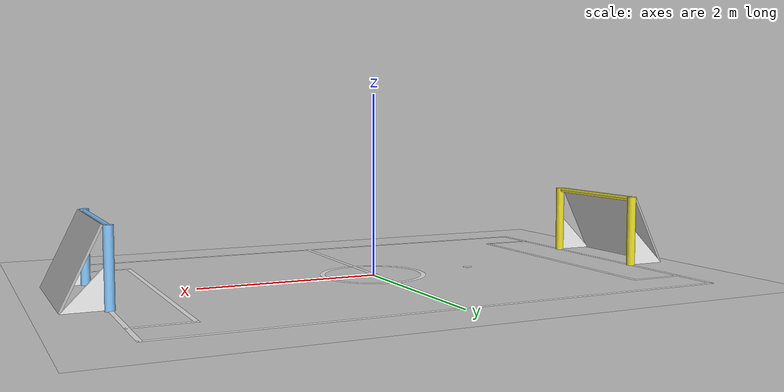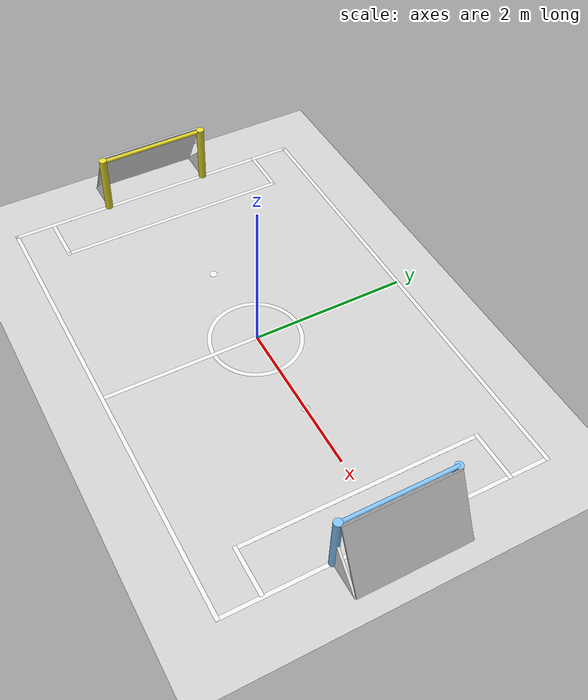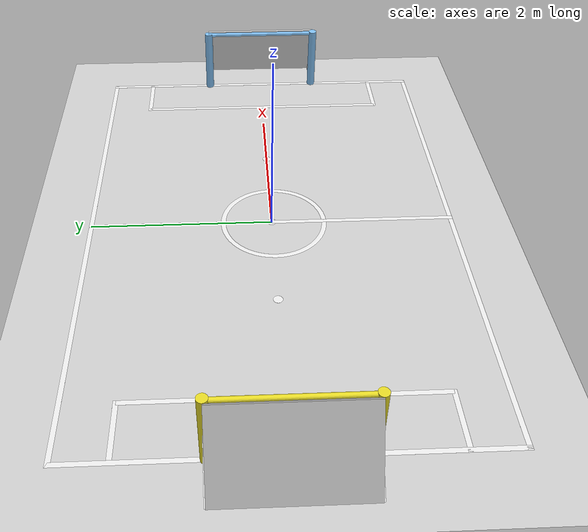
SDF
<?xml version="1.0" ?>
<sdf version="1.4">
  <model name="RoboCupSplField">
    <static>true</static>

    <link name="carpet">
      <pose>0 0 0.01 0 0 0</pose>
      <collision name="collision">
        <geometry>
          <plane>
            <normal>0 0 1</normal>
            <size>7.40 5.40</size>
          </plane>
        </geometry>
        <surface>
          <friction>
            <ode>
              <mu>100</mu>
              <mu2>50</mu2>
            </ode>
          </friction>
        </surface>
      </collision>
      <visual name="visual">
        <cast_shadows>false</cast_shadows>
        <geometry>
          <plane>
            <normal>0 0 1</normal>
            <size>7.40 5.40</size>
          </plane>
        </geometry>
        <material>
          <script>
            <uri>file://media/materials/scripts/gazebo.material</uri>
            <name>Gazebo/Carpet</name>
          </script>
        </material>
      </visual>
    </link>

    <link name="SideLine1">
      <pose>0 2 0.011 0 0 0</pose>
      <collision name="collision">
        <geometry>
          <plane>
            <normal>0 0 1</normal>
            <size>6.05 0.05</size>
          </plane>
        </geometry>
        <surface>
          <friction>
            <ode>
              <mu>100</mu>
              <mu2>50</mu2>
            </ode>
          </friction>
        </surface>
      </collision>
      <visual name="visual">
        <cast_shadows>false</cast_shadows>
        <geometry>
          <plane>
            <normal>0 0 1</normal>
            <size>6.05 0.05</size>
          </plane>
        </geometry>
        <material>
          <script>
            <uri>file://media/materials/scripts/gazebo.material</uri>
            <name>Gazebo/White</name>
          </script>
        </material>
      </visual>
    </link>

    <link name="SideLine2">
      <pose>0 -2 0.011 0 0 0</pose>
      <collision name="collision">
        <geometry>
          <plane>
            <normal>0 0 1</normal>
            <size>6.05 0.05</size>
          </plane>
        </geometry>
        <surface>
          <friction>
            <ode>
              <mu>100</mu>
              <mu2>50</mu2>
            </ode>
          </friction>
        </surface>
      </collision>
      <visual name="visual">
        <cast_shadows>false</cast_shadows>
        <geometry>
          <plane>
            <normal>0 0 1</normal>
            <size>6.05 0.05</size>
          </plane>
        </geometry>
        <material>
          <script>
            <uri>file://media/materials/scripts/gazebo.material</uri>
            <name>Gazebo/White</name>
          </script>
        </material>
      </visual>
    </link>

    <link name="EndLine1">
      <pose>-3 0 0.011 0 0 0</pose>
      <collision name="collision">
        <geometry>
          <plane>
            <normal>0 0 1</normal>
            <size>0.05 4.05</size>
          </plane>
        </geometry>
        <surface>
          <friction>
            <ode>
              <mu>100</mu>
              <mu2>50</mu2>
            </ode>
          </friction>
        </surface>
      </collision>
      <visual name="visual">
        <cast_shadows>false</cast_shadows>
        <geometry>
          <plane>
            <normal>0 0 1</normal>
            <size>0.05 4.05</size>
          </plane>
        </geometry>
        <material>
          <script>
            <uri>file://media/materials/scripts/gazebo.material</uri>
            <name>Gazebo/White</name>
          </script>
        </material>
      </visual>
    </link>

    <link name="EndLine2">
      <pose>3 0 0.011 0 0 0</pose>
      <collision name="collision">
        <geometry>
          <plane>
            <normal>0 0 1</normal>
            <size>0.05 4.05</size>
          </plane>
        </geometry>
        <surface>
          <friction>
            <ode>
              <mu>100</mu>
              <mu2>50</mu2>
            </ode>
          </friction>
        </surface>
      </collision>
      <visual name="visual">
        <cast_shadows>false</cast_shadows>
        <geometry>
          <plane>
            <normal>0 0 1</normal>
            <size>0.05 4.05</size>
          </plane>
        </geometry>
        <material>
          <script>
            <uri>file://media/materials/scripts/gazebo.material</uri>
            <name>Gazebo/White</name>
          </script>
        </material>
      </visual>
    </link>

    <link name="HalfwayLine">
      <pose>0 0 0.011 0 0 0</pose>
      <collision name="collision">
        <geometry>
          <plane>
            <normal>0 0 1</normal>
            <size>0.05 4.05</size>
          </plane>
        </geometry>
        <surface>
          <friction>
            <ode>
              <mu>100</mu>
              <mu2>50</mu2>
            </ode>
          </friction>
        </surface>
      </collision>
      <visual name="visual">
        <cast_shadows>false</cast_shadows>
        <geometry>
          <plane>
            <normal>0 0 1</normal>
            <size>0.05 4.05</size>
          </plane>
        </geometry>
        <material>
          <script>
            <uri>file://media/materials/scripts/gazebo.material</uri>
            <name>Gazebo/White</name>
          </script>
        </material>
      </visual>
    </link>

    <link name="Area1LineY">
      <pose>-2.40 0 0.011 0 0 0</pose>
      <collision name="collision">
        <geometry>
          <plane>
            <normal>0 0 1</normal>
            <size>0.05 3</size>
          </plane>
        </geometry>
        <surface>
          <friction>
            <ode>
              <mu>100</mu>
              <mu2>50</mu2>
            </ode>
          </friction>
        </surface>
      </collision>
      <visual name="visual">
        <cast_shadows>false</cast_shadows>
        <geometry>
          <plane>
            <normal>0 0 1</normal>
            <size>0.05 3</size>
          </plane>
        </geometry>
        <material>
          <script>
            <uri>file://media/materials/scripts/gazebo.material</uri>
            <name>Gazebo/White</name>
          </script>
        </material>
      </visual>
    </link>

    <link name="Area2LineY">
      <pose>-2.70 1.50 0.011 0 0 0</pose>
      <collision name="collision">
        <geometry>
          <plane>
            <normal>0 0 1</normal>
            <size>0.65 0.05</size>
          </plane>
        </geometry>
        <surface>
          <friction>
            <ode>
              <mu>100</mu>
              <mu2>50</mu2>
            </ode>
          </friction>
        </surface>
      </collision>
      <visual name="visual">
        <cast_shadows>false</cast_shadows>
        <geometry>
          <plane>
            <normal>0 0 1</normal>
            <size>0.65 0.05</size>
          </plane>
        </geometry>
        <material>
          <script>
            <uri>file://media/materials/scripts/gazebo.material</uri>
            <name>Gazebo/White</name>
          </script>
        </material>
      </visual>
    </link>

    <link name="Area3LineY">
      <pose>-2.70 -1.50 0.011 0 0 0</pose>
      <collision name="collision">
        <geometry>
          <plane>
            <normal>0 0 1</normal>
            <size>0.65 0.05</size>
          </plane>
        </geometry>
        <surface>
          <friction>
            <ode>
              <mu>100</mu>
              <mu2>50</mu2>
            </ode>
          </friction>
        </surface>
      </collision>
      <visual name="visual">
        <cast_shadows>false</cast_shadows>
        <geometry>
          <plane>
            <normal>0 0 1</normal>
            <size>0.65 0.05</size>
          </plane>
        </geometry>
        <material>
          <script>
            <uri>file://media/materials/scripts/gazebo.material</uri>
            <name>Gazebo/White</name>
          </script>
        </material>
      </visual>
    </link>

    <link name="Area1LineB">
      <pose>2.40 0 0.011 0 0 0</pose>
      <collision name="collision">
        <geometry>
          <plane>
            <normal>0 0 1</normal>
            <size>0.05 3</size>
          </plane>
        </geometry>
        <surface>
          <friction>
            <ode>
              <mu>100</mu>
              <mu2>50</mu2>
            </ode>
          </friction>
        </surface>
      </collision>
      <visual name="visual">
        <cast_shadows>false</cast_shadows>
        <geometry>
          <plane>
            <normal>0 0 1</normal>
            <size>0.05 3</size>
          </plane>
        </geometry>
        <material>
          <script>
            <uri>file://media/materials/scripts/gazebo.material</uri>
            <name>Gazebo/White</name>
          </script>
        </material>
      </visual>
    </link>

    <link name="Area2LineB">
      <pose>2.70 1.50 0.011 0 0 0</pose>
      <collision name="collision">
        <geometry>
          <plane>
            <normal>0 0 1</normal>
            <size>0.65 0.05</size>
          </plane>
        </geometry>
        <surface>
          <friction>
            <ode>
              <mu>100</mu>
              <mu2>50</mu2>
            </ode>
          </friction>
        </surface>
      </collision>
      <visual name="visual">
        <cast_shadows>false</cast_shadows>
        <geometry>
          <plane>
            <normal>0 0 1</normal>
            <size>0.65 0.05</size>
          </plane>
        </geometry>
        <material>
          <script>
            <uri>file://media/materials/scripts/gazebo.material</uri>
            <name>Gazebo/White</name>
          </script>
        </material>
      </visual>
    </link>

    <link name="Area3LineB">
      <pose>2.70 -1.50 0.011 0 0 0</pose>
      <collision name="collision">
        <geometry>
          <plane>
            <normal>0 0 1</normal>
            <size>0.65 0.05</size>
          </plane>
        </geometry>
        <surface>
          <friction>
            <ode>
              <mu>100</mu>
              <mu2>50</mu2>
            </ode>
          </friction>
        </surface>
      </collision>
      <visual name="visual">
        <cast_shadows>false</cast_shadows>
        <geometry>
          <plane>
            <normal>0 0 1</normal>
            <size>0.65 0.05</size>
          </plane>
        </geometry>
        <material>
          <script>
            <uri>file://media/materials/scripts/gazebo.material</uri>
            <name>Gazebo/White</name>
          </script>
        </material>
      </visual>
    </link>

    <link name="PenaltyB">
      <pose>-1.20 0 0.01 0 0 0</pose>
      <collision name="collision">
        <geometry>
          <cylinder>
            <radius>0.05</radius>
            <length>0.001</length>
          </cylinder>
        </geometry>
      </collision>
      <visual name="visual">
        <cast_shadows>false</cast_shadows>
        <geometry>
          <cylinder>
            <radius>0.05</radius>
            <length>0.001</length>
          </cylinder>
        </geometry>
        <material>
          <script>
            <uri>file://media/materials/scripts/gazebo.material</uri>
            <name>Gazebo/White</name>
          </script>
        </material>
      </visual>
    </link>

    <link name="PenaltyY">
      <pose>1.20 0 0.01 0 0 0</pose>
      <collision name="collision">
        <geometry>
          <cylinder>
            <radius>0.05</radius>
            <length>0.001</length>
          </cylinder>
        </geometry>
      </collision>
      <visual name="visual">
        <cast_shadows>false</cast_shadows>
        <geometry>
          <cylinder>
            <radius>0.05</radius>
            <length>0.001</length>
          </cylinder>
        </geometry>
        <material>
          <script>
            <uri>file://media/materials/scripts/gazebo.material</uri>
            <name>Gazebo/White</name>
          </script>
        </material>
      </visual>
    </link>

    <link name="CenterPoint">
      <pose>0 0 0.01 0 0 0</pose>
      <collision name="collision">
        <geometry>
          <cylinder>
            <radius>0.05</radius>
            <length>0.001</length>
          </cylinder>
        </geometry>
      </collision>
      <visual name="visual">
        <cast_shadows>false</cast_shadows>
        <geometry>
          <cylinder>
            <radius>0.05</radius>
            <length>0.001</length>
          </cylinder>
        </geometry>
        <material>
          <script>
            <uri>file://media/materials/scripts/gazebo.material</uri>
            <name>Gazebo/White</name>
          </script>
        </material>
      </visual>
    </link>

    <link name="CenterCircle">
      <pose>0 0 -0.01 0 0 0</pose>
      <collision name="collision">
        <geometry>
          <cylinder>
            <radius>0.575</radius>
            <length>0.011</length>
          </cylinder>
        </geometry>
      </collision>
      <visual name="visual">
        <cast_shadows>false</cast_shadows>
        <geometry>
          <mesh>
            <scale>1 1 0.75</scale>
            <uri>model://robocup_spl_goal/meshes/circle.dae</uri>
          </mesh>
        </geometry>
        <material>
          <script>
            <uri>file://media/materials/scripts/gazebo.material</uri>
            <name>Gazebo/White</name>
          </script>
        </material>
      </visual>
    </link>

    <link name="leftPostY">
      <pose>-3 0.7 0.41 0 0 0</pose>
      <inertial>
        <mass>0.1</mass>
      </inertial>
      <collision name="collision">
        <geometry>
          <cylinder>
            <radius>0.05</radius>
            <length>0.8</length>
          </cylinder>
        </geometry>
      </collision>
      <visual name="visual">
        <geometry>
          <cylinder>
            <radius>0.05</radius>
            <length>0.8</length>
          </cylinder>
        </geometry>
        <material>
          <script>
            <uri>file://media/materials/scripts/gazebo.material</uri>
            <name>Gazebo/Yellow</name>
          </script>
        </material>
      </visual>
    </link>

    <link name="leftSupportTriangleY">
      <pose>-3.043 -0.7 0.01 0 0 -1.5708</pose>
      <inertial>
        <mass>0.1</mass>
      </inertial>
      <visual name="visual">
        <geometry>
          <mesh>
            <scale>0.41 0.41 0.41</scale>
            <uri>model://robocup_spl_goal/meshes/triangle.dae</uri>
          </mesh>
        </geometry>
        <material>
          <script>
            <uri>file://media/materials/scripts/gazebo.material</uri>
            <name>Gazebo/White</name>
          </script>
        </material>
      </visual>
    </link>

    <link name="rightPostY">
      <pose>-3 -0.7 0.41 0 0 0</pose>
      <inertial>
        <mass>0.1</mass>
      </inertial>
      <collision name="collision">
        <geometry>
          <cylinder>
            <radius>0.05</radius>
            <length>0.8</length>
          </cylinder>
        </geometry>
      </collision>
      <visual name="visual">
        <geometry>
          <cylinder>
            <radius>0.05</radius>
            <length>0.8</length>
          </cylinder>
        </geometry>
        <material>
          <script>
            <uri>file://media/materials/scripts/gazebo.material</uri>
            <name>Gazebo/Yellow</name>
          </script>
        </material>
      </visual>
    </link>

    <link name="rightSupportTriangleY">
      <pose>-3.043 0.7 0.01 0 0 -1.5708</pose>
      <inertial>
        <mass>0.1</mass>
      </inertial>
      <visual name="visual">
        <geometry>
          <mesh>
            <scale>0.41 0.41 0.41</scale>
            <uri>model://robocup_spl_goal/meshes/triangle.dae</uri>
          </mesh>
        </geometry>
        <material>
          <script>
            <uri>file://media/materials/scripts/gazebo.material</uri>
            <name>Gazebo/White</name>
          </script>
        </material>
      </visual>
    </link>

    <link name="crossbarY">
      <pose>-3 0 0.785 1.57 1.57 0</pose>
      <inertial>
        <mass>0.1</mass>
      </inertial>
      <collision name="collision">
        <geometry>
          <cylinder>
            <radius>0.025</radius>
            <length>1.4</length>
          </cylinder>
        </geometry>
      </collision>
      <visual name="visual">
        <geometry>
          <cylinder>
            <radius>0.025</radius>
            <length>1.4</length>
          </cylinder>
        </geometry>
        <material>
          <script>
            <uri>file://media/materials/scripts/gazebo.material</uri>
            <name>Gazebo/Yellow</name>
          </script>
        </material>
      </visual>
    </link>

    <link name="netY">
      <pose>-3.25 0 0.41 0 -1.11 0</pose>
      <inertial>
        <mass>0.1</mass>
      </inertial>
      <collision name="collision">
        <geometry>
          <box>
            <size>0.88 1.4 0.025</size>
          </box>
        </geometry>
      </collision>
      <visual name="visual">
        <geometry>
          <box>
            <size>0.88 1.4 0.025</size>
          </box>
        </geometry>
        <material>
          <script>
            <uri>file://media/materials/scripts/gazebo.material</uri>
            <name>Gazebo/Net</name>
          </script>
        </material>
      </visual>
    </link>

    <link name="leftPostB">
      <pose>3 0.7 0.4 0.01 0 0</pose>
      <inertial>
        <mass>0.1</mass>
      </inertial>
      <collision name="collision">
        <geometry>
          <cylinder>
            <radius>0.05</radius>
            <length>0.8</length>
          </cylinder>
        </geometry>
      </collision>
      <visual name="visual">
        <geometry>
          <cylinder>
            <radius>0.05</radius>
            <length>0.8</length>
          </cylinder>
        </geometry>
        <material>
          <script>
            <uri>file://media/materials/scripts/gazebo.material</uri>
            <name>Gazebo/SkyBlue</name>
          </script>
        </material>
      </visual>
    </link>

    <link name="leftSupportTriangleB">
      <pose>3.043 -0.7 0.01 0 0 1.5708</pose>
      <inertial>
        <mass>0.1</mass>
      </inertial>
      <visual name="visual">
        <geometry>
          <mesh>
            <scale>0.41 0.41 0.41</scale>
            <uri>model://robocup_spl_goal/meshes/triangle.dae</uri>
          </mesh>
        </geometry>
        <material>
          <script>
            <uri>file://media/materials/scripts/gazebo.material</uri>
            <name>Gazebo/White</name>
          </script>
        </material>
      </visual>
    </link>

    <link name="rightPostB">
      <pose>3 -0.7 0.41 0 0 0</pose>
      <inertial>
        <mass>0.1</mass>
      </inertial>
      <collision name="collision">
        <geometry>
          <cylinder>
            <radius>0.05</radius>
            <length>0.8</length>
          </cylinder>
        </geometry>
      </collision>
      <visual name="visual">
        <geometry>
          <cylinder>
            <radius>0.05</radius>
            <length>0.8</length>
          </cylinder>
        </geometry>
        <material>
          <script>
            <uri>file://media/materials/scripts/gazebo.material</uri>
            <name>Gazebo/SkyBlue</name>
          </script>
        </material>
      </visual>
    </link>

    <link name="rightSupportTriangleB">
      <pose>3.043 0.7 0.01 0 0 1.5708</pose>
      <inertial>
        <mass>0.1</mass>
      </inertial>
      <visual name="visual">
        <geometry>
          <mesh>
            <scale>0.41 0.41 0.41</scale>
            <uri>model://robocup_spl_goal/meshes/triangle.dae</uri>
          </mesh>
        </geometry>
        <material>
          <script>
            <uri>file://media/materials/scripts/gazebo.material</uri>
            <name>Gazebo/White</name>
          </script>
        </material>
      </visual>
    </link>

    <link name="crossbarB">
      <pose>3 0 0.785 1.57 1.57 0</pose>
      <inertial>
        <mass>0.1</mass>
      </inertial>
      <collision name="collision">
        <geometry>
          <cylinder>
            <radius>0.025</radius>
            <length>1.4</length>
          </cylinder>
        </geometry>
      </collision>
      <visual name="visual">
        <geometry>
          <cylinder>
            <radius>0.025</radius>
            <length>1.4</length>
          </cylinder>
        </geometry>
        <material>
          <script>
            <uri>file://media/materials/scripts/gazebo.material</uri>
            <name>Gazebo/SkyBlue</name>
          </script>
        </material>
      </visual>
    </link>

    <link name="netB">
      <pose>3.25 0 0.41 0 1.11 0</pose>
      <inertial>
        <mass>0.1</mass>
      </inertial>
      <collision name="collision">
        <geometry>
          <box>
            <size>0.88 1.4 0.025</size>
          </box>
        </geometry>
      </collision>
      <visual name="visual">
        <geometry>
          <box>
            <size>0.88 1.4 0.025</size>
          </box>
        </geometry>
        <material>
          <script>
            <uri>file://media/materials/scripts/gazebo.material</uri>
            <name>Gazebo/Net</name>
          </script>
        </material>
      </visual>
    </link>

  </model>
</sdf>
